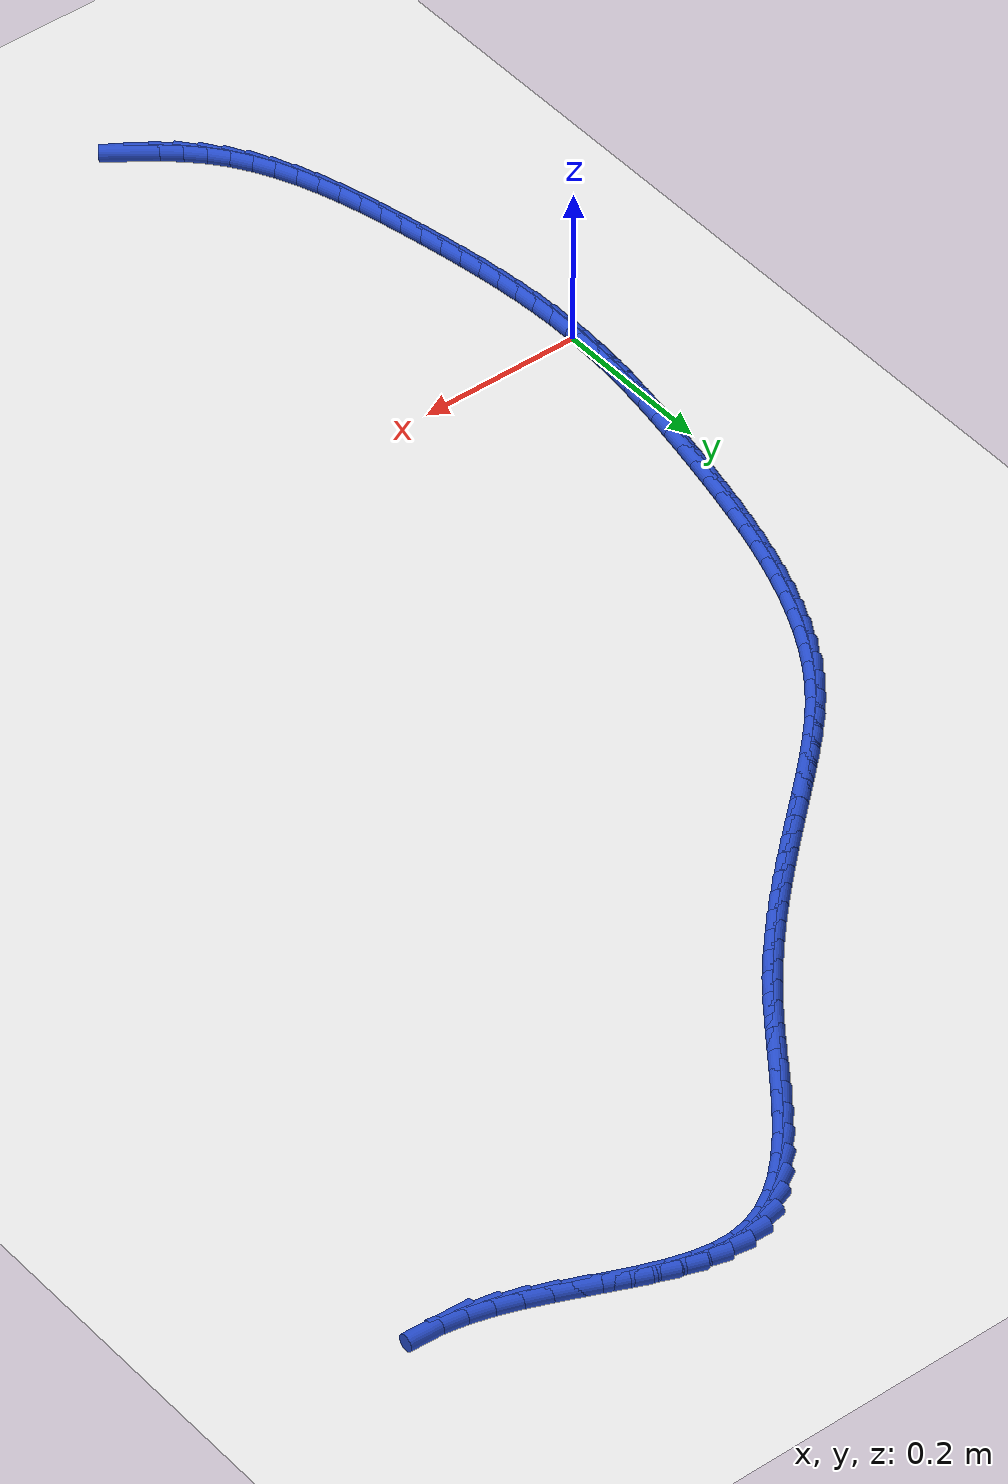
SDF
<sdf version="1.6">
 <world name="default">
  <model name="ground_plane">
   <static>1</static>
   <link name="link">
    <collision name="collision">
     <geometry><plane><normal>0 0 1</normal><size>100 100</size></plane></geometry>
     <surface><friction><ode><mu>100</mu><mu2>50</mu2></ode></friction></surface>
    </collision>
    <visual name="visual">
     <cast_shadows>0</cast_shadows>
     <geometry><plane><normal>0 0 1</normal><size>100 100</size></plane></geometry>
     <material>
      <script><uri>file://media/materials/scripts/gazebo.material</uri><name>Gazebo/WhiteGlow</name></script>
     </material>
    </visual>
   </link>
  </model>
  <model name="line">
   <link name="link_0">
    <pose>6.938893903907228e-18 -2.0816681711721685e-17 0.01 0 1.57 1.5494531435086585</pose>
    <collision name="collision">
     <geometry><cylinder><radius>0.01</radius><length>0.08</length></cylinder></geometry>
    </collision>
    <visual name="visual">
     <material>
      <script><name>Gazebo/Blue</name><uri>file://media/materials/scripts/gazebo.material</uri></script>
     </material>
     <geometry><cylinder><radius>0.01</radius><length>0.08</length></cylinder></geometry>
    </visual>
   </link>
   <link name="link_1">
    <pose>0.0005825838232916123 0.027291868838746187 0.01 0 1.57 1.515931259168401</pose>
    <collision name="collision">
     <geometry><cylinder><radius>0.01</radius><length>0.08</length></cylinder></geometry>
    </collision>
    <visual name="visual">
     <material>
      <script><name>Gazebo/Blue</name><uri>file://media/materials/scripts/gazebo.material</uri></script>
     </material>
     <geometry><cylinder><radius>0.01</radius><length>0.08</length></cylinder></geometry>
    </visual>
   </link>
   <link name="link_2">
    <pose>0.0020831431300984845 0.054614415231058575 0.01 0 1.57 1.4859358087470094</pose>
    <collision name="collision">
     <geometry><cylinder><radius>0.01</radius><length>0.08</length></cylinder></geometry>
    </collision>
    <visual name="visual">
     <material>
      <script><name>Gazebo/Blue</name><uri>file://media/materials/scripts/gazebo.material</uri></script>
     </material>
     <geometry><cylinder><radius>0.01</radius><length>0.08</length></cylinder></geometry>
    </visual>
   </link>
   <link name="link_3">
    <pose>0.004410571160714683 0.08197506018530926 0.01 0 1.57 1.4594881915163689</pose>
    <collision name="collision">
     <geometry><cylinder><radius>0.01</radius><length>0.08</length></cylinder></geometry>
    </collision>
    <visual name="visual">
     <material>
      <script><name>Gazebo/Blue</name><uri>file://media/materials/scripts/gazebo.material</uri></script>
     </material>
     <geometry><cylinder><radius>0.01</radius><length>0.08</length></cylinder></geometry>
    </visual>
   </link>
   <link name="link_4">
    <pose>0.007473761155434266 0.10938122470987041 0.01 0 1.57 1.4365766252881271</pose>
    <collision name="collision">
     <geometry><cylinder><radius>0.01</radius><length>0.08</length></cylinder></geometry>
    </collision>
    <visual name="visual">
     <material>
      <script><name>Gazebo/Blue</name><uri>file://media/materials/scripts/gazebo.material</uri></script>
     </material>
     <geometry><cylinder><radius>0.01</radius><length>0.08</length></cylinder></geometry>
    </visual>
   </link>
   <link name="link_5">
    <pose>0.011181606354551284 0.13684032981311414 0.01 0 1.57 1.4171663608020437</pose>
    <collision name="collision">
     <geometry><cylinder><radius>0.01</radius><length>0.08</length></cylinder></geometry>
    </collision>
    <visual name="visual">
     <material>
      <script><name>Gazebo/Blue</name><uri>file://media/materials/scripts/gazebo.material</uri></script>
     </material>
     <geometry><cylinder><radius>0.01</radius><length>0.08</length></cylinder></geometry>
    </visual>
   </link>
   <link name="link_6">
    <pose>0.015442999998359797 0.16435979650341256 0.01 0 1.57 1.401208474222697</pose>
    <collision name="collision">
     <geometry><cylinder><radius>0.01</radius><length>0.08</length></cylinder></geometry>
    </collision>
    <visual name="visual">
     <material>
      <script><name>Gazebo/Blue</name><uri>file://media/materials/scripts/gazebo.material</uri></script>
     </material>
     <geometry><cylinder><radius>0.01</radius><length>0.08</length></cylinder></geometry>
    </visual>
   </link>
   <link name="link_7">
    <pose>0.02016683532715386 0.19194704578913788 0.01 0 1.57 1.388647062900531</pose>
    <collision name="collision">
     <geometry><cylinder><radius>0.01</radius><length>0.08</length></cylinder></geometry>
    </collision>
    <visual name="visual">
     <material>
      <script><name>Gazebo/Blue</name><uri>file://media/materials/scripts/gazebo.material</uri></script>
     </material>
     <geometry><cylinder><radius>0.01</radius><length>0.08</length></cylinder></geometry>
    </visual>
   </link>
   <link name="link_8">
    <pose>0.025262005581227535 0.2196094986786622 0.01 0 1.57 1.3793966796333932</pose>
    <collision name="collision">
     <geometry><cylinder><radius>0.01</radius><length>0.08</length></cylinder></geometry>
    </collision>
    <visual name="visual">
     <material>
      <script><name>Gazebo/Blue</name><uri>file://media/materials/scripts/gazebo.material</uri></script>
     </material>
     <geometry><cylinder><radius>0.01</radius><length>0.08</length></cylinder></geometry>
    </visual>
   </link>
   <link name="link_9">
    <pose>0.030638147203376143 0.24735422685794506 0.01 0 1.57 1.3710302161828525</pose>
    <collision name="collision">
     <geometry><cylinder><radius>0.01</radius><length>0.08</length></cylinder></geometry>
    </collision>
    <visual name="visual">
     <material>
      <script><name>Gazebo/Blue</name><uri>file://media/materials/scripts/gazebo.material</uri></script>
     </material>
     <geometry><cylinder><radius>0.01</radius><length>0.08</length></cylinder></geometry>
    </visual>
   </link>
   <link name="link_10">
    <pose>0.036267644909226696 0.2751588088694036 0.01 0 1.57 1.3593739814863635</pose>
    <collision name="collision">
     <geometry><cylinder><radius>0.01</radius><length>0.08</length></cylinder></geometry>
    </collision>
    <visual name="visual">
     <material>
      <script><name>Gazebo/Blue</name><uri>file://media/materials/scripts/gazebo.material</uri></script>
     </material>
     <geometry><cylinder><radius>0.01</radius><length>0.08</length></cylinder></geometry>
    </visual>
   </link>
   <link name="link_11">
    <pose>0.042232331299595624 0.30294938021100704 0.01 0 1.57 1.343964227864858</pose>
    <collision name="collision">
     <geometry><cylinder><radius>0.01</radius><length>0.08</length></cylinder></geometry>
    </collision>
    <visual name="visual">
     <material>
      <script><name>Gazebo/Blue</name><uri>file://media/materials/scripts/gazebo.material</uri></script>
     </material>
     <geometry><cylinder><radius>0.01</radius><length>0.08</length></cylinder></geometry>
    </visual>
   </link>
   <link name="link_12">
    <pose>0.0486250381578275 0.3306469065098339 0.01 0 1.57 1.3247170430544049</pose>
    <collision name="collision">
     <geometry><cylinder><radius>0.01</radius><length>0.08</length></cylinder></geometry>
    </collision>
    <visual name="visual">
     <material>
      <script><name>Gazebo/Blue</name><uri>file://media/materials/scripts/gazebo.material</uri></script>
     </material>
     <geometry><cylinder><radius>0.01</radius><length>0.08</length></cylinder></geometry>
    </visual>
   </link>
   <link name="link_13">
    <pose>0.05553859726726691 0.3581723533929629 0.01 0 1.57 1.301516769421281</pose>
    <collision name="collision">
     <geometry><cylinder><radius>0.01</radius><length>0.08</length></cylinder></geometry>
    </collision>
    <visual name="visual">
     <material>
      <script><name>Gazebo/Blue</name><uri>file://media/materials/scripts/gazebo.material</uri></script>
     </material>
     <geometry><cylinder><radius>0.01</radius><length>0.08</length></cylinder></geometry>
    </visual>
   </link>
   <link name="link_14">
    <pose>0.06306584041125841 0.3854466864874726 0.01 0 1.57 1.2742229018336808</pose>
    <collision name="collision">
     <geometry><cylinder><radius>0.01</radius><length>0.08</length></cylinder></geometry>
    </collision>
    <visual name="visual">
     <material>
      <script><name>Gazebo/Blue</name><uri>file://media/materials/scripts/gazebo.material</uri></script>
     </material>
     <geometry><cylinder><radius>0.01</radius><length>0.08</length></cylinder></geometry>
    </visual>
   </link>
   <link name="link_15">
    <pose>0.07129959937314657 0.41239087142044156 0.01 0 1.57 1.242679327505642</pose>
    <collision name="collision">
     <geometry><cylinder><radius>0.01</radius><length>0.08</length></cylinder></geometry>
    </collision>
    <visual name="visual">
     <material>
      <script><name>Gazebo/Blue</name><uri>file://media/materials/scripts/gazebo.material</uri></script>
     </material>
     <geometry><cylinder><radius>0.01</radius><length>0.08</length></cylinder></geometry>
    </visual>
   </link>
   <link name="link_16">
    <pose>0.08033270593627595 0.4389258738189481 0.01 0 1.57 1.2067268173624675</pose>
    <collision name="collision">
     <geometry><cylinder><radius>0.01</radius><length>0.08</length></cylinder></geometry>
    </collision>
    <visual name="visual">
     <material>
      <script><name>Gazebo/Blue</name><uri>file://media/materials/scripts/gazebo.material</uri></script>
     </material>
     <geometry><cylinder><radius>0.01</radius><length>0.08</length></cylinder></geometry>
    </visual>
   </link>
   <link name="link_17">
    <pose>0.09025799188399117 0.46497265931007126 0.01 0 1.57 1.1662196836590046</pose>
    <collision name="collision">
     <geometry><cylinder><radius>0.01</radius><length>0.08</length></cylinder></geometry>
    </collision>
    <visual name="visual">
     <material>
      <script><name>Gazebo/Blue</name><uri>file://media/materials/scripts/gazebo.material</uri></script>
     </material>
     <geometry><cylinder><radius>0.01</radius><length>0.08</length></cylinder></geometry>
    </visual>
   </link>
   <link name="link_18">
    <pose>0.10116828899963673 0.49045219352088926 0.01 0 1.57 1.1210473194514161</pose>
    <collision name="collision">
     <geometry><cylinder><radius>0.01</radius><length>0.08</length></cylinder></geometry>
    </collision>
    <visual name="visual">
     <material>
      <script><name>Gazebo/Blue</name><uri>file://media/materials/scripts/gazebo.material</uri></script>
     </material>
     <geometry><cylinder><radius>0.01</radius><length>0.08</length></cylinder></geometry>
    </visual>
   </link>
   <link name="link_19">
    <pose>0.11315642906655723 0.5152854420784809 0.01 0 1.57 1.0711607935965868</pose>
    <collision name="collision">
     <geometry><cylinder><radius>0.01</radius><length>0.08</length></cylinder></geometry>
    </collision>
    <visual name="visual">
     <material>
      <script><name>Gazebo/Blue</name><uri>file://media/materials/scripts/gazebo.material</uri></script>
     </material>
     <geometry><cylinder><radius>0.01</radius><length>0.08</length></cylinder></geometry>
    </visual>
   </link>
   <link name="link_20">
    <pose>0.12631524386809725 0.5393933706099246 0.01 0 1.57 1.016603648147927</pose>
    <collision name="collision">
     <geometry><cylinder><radius>0.01</radius><length>0.08</length></cylinder></geometry>
    </collision>
    <visual name="visual">
     <material>
      <script><name>Gazebo/Blue</name><uri>file://media/materials/scripts/gazebo.material</uri></script>
     </material>
     <geometry><cylinder><radius>0.01</radius><length>0.08</length></cylinder></geometry>
    </visual>
   </link>
   <link name="link_21">
    <pose>0.1407375651876014 0.5626969447422993 0.01 0 1.57 0.9575444677504552</pose>
    <collision name="collision">
     <geometry><cylinder><radius>0.01</radius><length>0.08</length></cylinder></geometry>
    </collision>
    <visual name="visual">
     <material>
      <script><name>Gazebo/Blue</name><uri>file://media/materials/scripts/gazebo.material</uri></script>
     </material>
     <geometry><cylinder><radius>0.01</radius><length>0.08</length></cylinder></geometry>
    </visual>
   </link>
   <link name="link_22">
    <pose>0.15651622480841415 0.585117130102683 0.01 0 1.57 0.8946184165654034</pose>
    <collision name="collision">
     <geometry><cylinder><radius>0.01</radius><length>0.08</length></cylinder></geometry>
    </collision>
    <visual name="visual">
     <material>
      <script><name>Gazebo/Blue</name><uri>file://media/materials/scripts/gazebo.material</uri></script>
     </material>
     <geometry><cylinder><radius>0.01</radius><length>0.08</length></cylinder></geometry>
    </visual>
   </link>
   <link name="link_23">
    <pose>0.17373627909197395 0.6065789033945376 0.01 0 1.57 0.836023580005325</pose>
    <collision name="collision">
     <geometry><cylinder><radius>0.01</radius><length>0.08</length></cylinder></geometry>
    </collision>
    <visual name="visual">
     <material>
      <script><name>Gazebo/Blue</name><uri>file://media/materials/scripts/gazebo.material</uri></script>
     </material>
     <geometry><cylinder><radius>0.01</radius><length>0.08</length></cylinder></geometry>
    </visual>
   </link>
   <link name="link_24">
    <pose>0.19228601286615007 0.627108749080089 0.01 0 1.57 0.7897481582650647</pose>
    <collision name="collision">
     <geometry><cylinder><radius>0.01</radius><length>0.08</length></cylinder></geometry>
    </collision>
    <visual name="visual">
     <material>
      <script><name>Gazebo/Blue</name><uri>file://media/materials/scripts/gazebo.material</uri></script>
     </material>
     <geometry><cylinder><radius>0.01</radius><length>0.08</length></cylinder></geometry>
    </visual>
   </link>
   <link name="link_25">
    <pose>0.21184642646782254 0.6468400826584106 0.01 0 1.57 0.7556238388812125</pose>
    <collision name="collision">
     <geometry><cylinder><radius>0.01</radius><length>0.08</length></cylinder></geometry>
    </collision>
    <visual name="visual">
     <material>
      <script><name>Gazebo/Blue</name><uri>file://media/materials/scripts/gazebo.material</uri></script>
     </material>
     <geometry><cylinder><radius>0.01</radius><length>0.08</length></cylinder></geometry>
    </visual>
   </link>
   <link name="link_26">
    <pose>0.23208864043470145 0.6659114162818012 0.01 0 1.57 0.7331965562980377</pose>
    <collision name="collision">
     <geometry><cylinder><radius>0.01</radius><length>0.08</length></cylinder></geometry>
    </collision>
    <visual name="visual">
     <material>
      <script><name>Gazebo/Blue</name><uri>file://media/materials/scripts/gazebo.material</uri></script>
     </material>
     <geometry><cylinder><radius>0.01</radius><length>0.08</length></cylinder></geometry>
    </visual>
   </link>
   <link name="link_27">
    <pose>0.25268377530449676 0.6844612621025574 0.01 0 1.57 0.7220689563805252</pose>
    <collision name="collision">
     <geometry><cylinder><radius>0.01</radius><length>0.08</length></cylinder></geometry>
    </collision>
    <visual name="visual">
     <material>
      <script><name>Gazebo/Blue</name><uri>file://media/materials/scripts/gazebo.material</uri></script>
     </material>
     <geometry><cylinder><radius>0.01</radius><length>0.08</length></cylinder></geometry>
    </visual>
   </link>
   <link name="link_28">
    <pose>0.27331071656711353 0.7026281323857229 0.01 0 1.57 0.7184831092377628</pose>
    <collision name="collision">
     <geometry><cylinder><radius>0.01</radius><length>0.08</length></cylinder></geometry>
    </collision>
    <visual name="visual">
     <material>
      <script><name>Gazebo/Blue</name><uri>file://media/materials/scripts/gazebo.material</uri></script>
     </material>
     <geometry><cylinder><radius>0.01</radius><length>0.08</length></cylinder></geometry>
    </visual>
   </link>
   <link name="link_29">
    <pose>0.2938078131896725 0.7205505417117236 0.01 0 1.57 0.7189898173264087</pose>
    <collision name="collision">
     <geometry><cylinder><radius>0.01</radius><length>0.08</length></cylinder></geometry>
    </collision>
    <visual name="visual">
     <material>
      <script><name>Gazebo/Blue</name><uri>file://media/materials/scripts/gazebo.material</uri></script>
     </material>
     <geometry><cylinder><radius>0.01</radius><length>0.08</length></cylinder></geometry>
    </visual>
   </link>
   <link name="link_30">
    <pose>0.3141629223896402 0.7383670068318198 0.01 0 1.57 0.7235231356761888</pose>
    <collision name="collision">
     <geometry><cylinder><radius>0.01</radius><length>0.08</length></cylinder></geometry>
    </collision>
    <visual name="visual">
     <material>
      <script><name>Gazebo/Blue</name><uri>file://media/materials/scripts/gazebo.material</uri></script>
     </material>
     <geometry><cylinder><radius>0.01</radius><length>0.08</length></cylinder></geometry>
    </visual>
   </link>
   <link name="link_31">
    <pose>0.3343696726972589 0.7562160445810704 0.01 0 1.57 0.732079214448538</pose>
    <collision name="collision">
     <geometry><cylinder><radius>0.01</radius><length>0.08</length></cylinder></geometry>
    </collision>
    <visual name="visual">
     <material>
      <script><name>Gazebo/Blue</name><uri>file://media/materials/scripts/gazebo.material</uri></script>
     </material>
     <geometry><cylinder><radius>0.01</radius><length>0.08</length></cylinder></geometry>
    </visual>
   </link>
   <link name="link_32">
    <pose>0.35442169264277107 0.7742361717945343 0.01 0 1.57 0.7445742330993187</pose>
    <collision name="collision">
     <geometry><cylinder><radius>0.01</radius><length>0.08</length></cylinder></geometry>
    </collision>
    <visual name="visual">
     <material>
      <script><name>Gazebo/Blue</name><uri>file://media/materials/scripts/gazebo.material</uri></script>
     </material>
     <geometry><cylinder><radius>0.01</radius><length>0.08</length></cylinder></geometry>
    </visual>
   </link>
   <link name="link_33">
    <pose>0.37431261075641875 0.7925659053072703 0.01 0 1.57 0.7608431983652604</pose>
    <collision name="collision">
     <geometry><cylinder><radius>0.01</radius><length>0.08</length></cylinder></geometry>
    </collision>
    <visual name="visual">
     <material>
      <script><name>Gazebo/Blue</name><uri>file://media/materials/scripts/gazebo.material</uri></script>
     </material>
     <geometry><cylinder><radius>0.01</radius><length>0.08</length></cylinder></geometry>
    </visual>
   </link>
   <link name="link_34">
    <pose>0.39403605556844457 0.8113437619543372 0.01 0 1.57 0.7806414802405397</pose>
    <collision name="collision">
     <geometry><cylinder><radius>0.01</radius><length>0.08</length></cylinder></geometry>
    </collision>
    <visual name="visual">
     <material>
      <script><name>Gazebo/Blue</name><uri>file://media/materials/scripts/gazebo.material</uri></script>
     </material>
     <geometry><cylinder><radius>0.01</radius><length>0.08</length></cylinder></geometry>
    </visual>
   </link>
   <link name="link_35">
    <pose>0.41358565560909066 0.8307082585707939 0.01 0 1.57 0.8036497400095954</pose>
    <collision name="collision">
     <geometry><cylinder><radius>0.01</radius><length>0.08</length></cylinder></geometry>
    </collision>
    <visual name="visual">
     <material>
      <script><name>Gazebo/Blue</name><uri>file://media/materials/scripts/gazebo.material</uri></script>
     </material>
     <geometry><cylinder><radius>0.01</radius><length>0.08</length></cylinder></geometry>
    </visual>
   </link>
   <link name="link_36">
    <pose>0.4329550394085992 0.8507979119916991 0.01 0 1.57 0.829482736224326</pose>
    <collision name="collision">
     <geometry><cylinder><radius>0.01</radius><length>0.08</length></cylinder></geometry>
    </collision>
    <visual name="visual">
     <material>
      <script><name>Gazebo/Blue</name><uri>file://media/materials/scripts/gazebo.material</uri></script>
     </material>
     <geometry><cylinder><radius>0.01</radius><length>0.08</length></cylinder></geometry>
    </visual>
   </link>
   <link name="link_37">
    <pose>0.45213783549721265 0.8717512390521117 0.01 0 1.57 0.8577021111829118</pose>
    <collision name="collision">
     <geometry><cylinder><radius>0.01</radius><length>0.08</length></cylinder></geometry>
    </collision>
    <visual name="visual">
     <material>
      <script><name>Gazebo/Blue</name><uri>file://media/materials/scripts/gazebo.material</uri></script>
     </material>
     <geometry><cylinder><radius>0.01</radius><length>0.08</length></cylinder></geometry>
    </visual>
   </link>
   <link name="link_38">
    <pose>0.4711276724051735 0.8937067565870908 0.01 0 1.57 0.8878327082598387</pose>
    <collision name="collision">
     <geometry><cylinder><radius>0.01</radius><length>0.08</length></cylinder></geometry>
    </collision>
    <visual name="visual">
     <material>
      <script><name>Gazebo/Blue</name><uri>file://media/materials/scripts/gazebo.material</uri></script>
     </material>
     <geometry><cylinder><radius>0.01</radius><length>0.08</length></cylinder></geometry>
    </visual>
   </link>
   <link name="link_39">
    <pose>0.4899181786736791 0.9168029813638459 0.01 0 1.57 0.9166592646081043</pose>
    <collision name="collision">
     <geometry><cylinder><radius>0.01</radius><length>0.08</length></cylinder></geometry>
    </collision>
    <visual name="visual">
     <material>
      <script><name>Gazebo/Blue</name><uri>file://media/materials/scripts/gazebo.material</uri></script>
     </material>
     <geometry><cylinder><radius>0.01</radius><length>0.08</length></cylinder></geometry>
    </visual>
   </link>
   <link name="link_40">
    <pose>0.5085212726804981 0.9410651561491807 0.01 0 1.57 0.9339773057644073</pose>
    <collision name="collision">
     <geometry><cylinder><radius>0.01</radius><length>0.08</length></cylinder></geometry>
    </collision>
    <visual name="visual">
     <material>
      <script><name>Gazebo/Blue</name><uri>file://media/materials/scripts/gazebo.material</uri></script>
     </material>
     <geometry><cylinder><radius>0.01</radius><length>0.08</length></cylinder></geometry>
    </visual>
   </link>
   <link name="link_41">
    <pose>0.5270201900717003 0.9660768362050959 0.01 0 1.57 0.9383528872575571</pose>
    <collision name="collision">
     <geometry><cylinder><radius>0.01</radius><length>0.08</length></cylinder></geometry>
    </collision>
    <visual name="visual">
     <material>
      <script><name>Gazebo/Blue</name><uri>file://media/materials/scripts/gazebo.material</uri></script>
     </material>
     <geometry><cylinder><radius>0.01</radius><length>0.08</length></cylinder></geometry>
    </visual>
   </link>
   <link name="link_42">
    <pose>0.5455155468287546 0.991313935584696 0.01 0 1.57 0.9301605549803177</pose>
    <collision name="collision">
     <geometry><cylinder><radius>0.01</radius><length>0.08</length></cylinder></geometry>
    </collision>
    <visual name="visual">
     <material>
      <script><name>Gazebo/Blue</name><uri>file://media/materials/scripts/gazebo.material</uri></script>
     </material>
     <geometry><cylinder><radius>0.01</radius><length>0.08</length></cylinder></geometry>
    </visual>
   </link>
   <link name="link_43">
    <pose>0.5641079589331288 1.0162523683410845 0.01 0 1.57 0.9088896641070441</pose>
    <collision name="collision">
     <geometry><cylinder><radius>0.01</radius><length>0.08</length></cylinder></geometry>
    </collision>
    <visual name="visual">
     <material>
      <script><name>Gazebo/Blue</name><uri>file://media/materials/scripts/gazebo.material</uri></script>
     </material>
     <geometry><cylinder><radius>0.01</radius><length>0.08</length></cylinder></geometry>
    </visual>
   </link>
   <link name="link_44">
    <pose>0.5828980423662917 1.0403680485273656 0.01 0 1.57 0.8731017928134122</pose>
    <collision name="collision">
     <geometry><cylinder><radius>0.01</radius><length>0.08</length></cylinder></geometry>
    </collision>
    <visual name="visual">
     <material>
      <script><name>Gazebo/Blue</name><uri>file://media/materials/scripts/gazebo.material</uri></script>
     </material>
     <geometry><cylinder><radius>0.01</radius><length>0.08</length></cylinder></geometry>
    </visual>
   </link>
   <link name="link_45">
    <pose>0.6019864131097119 1.0631368901966443 0.01 0 1.57 0.8203136818103788</pose>
    <collision name="collision">
     <geometry><cylinder><radius>0.01</radius><length>0.08</length></cylinder></geometry>
    </collision>
    <visual name="visual">
     <material>
      <script><name>Gazebo/Blue</name><uri>file://media/materials/scripts/gazebo.material</uri></script>
     </material>
     <geometry><cylinder><radius>0.01</radius><length>0.08</length></cylinder></geometry>
    </visual>
   </link>
   <link name="link_46">
    <pose>0.621473687144858 1.0840348074020243 0.01 0 1.57 0.7468644261123002</pose>
    <collision name="collision">
     <geometry><cylinder><radius>0.01</radius><length>0.08</length></cylinder></geometry>
    </collision>
    <visual name="visual">
     <material>
      <script><name>Gazebo/Blue</name><uri>file://media/materials/scripts/gazebo.material</uri></script>
     </material>
     <geometry><cylinder><radius>0.01</radius><length>0.08</length></cylinder></geometry>
    </visual>
   </link>
   <link name="link_47">
    <pose>0.6414604804531984 1.1025377141966106 0.01 0 1.57 0.6479508072377705</pose>
    <collision name="collision">
     <geometry><cylinder><radius>0.01</radius><length>0.08</length></cylinder></geometry>
    </collision>
    <visual name="visual">
     <material>
      <script><name>Gazebo/Blue</name><uri>file://media/materials/scripts/gazebo.material</uri></script>
     </material>
     <geometry><cylinder><radius>0.01</radius><length>0.08</length></cylinder></geometry>
    </visual>
   </link>
   <link name="link_48">
    <pose>0.6620474090162014 1.1181215246335066 0.01 0 1.57 0.5183043014613671</pose>
    <collision name="collision">
     <geometry><cylinder><radius>0.01</radius><length>0.08</length></cylinder></geometry>
    </collision>
    <visual name="visual">
     <material>
      <script><name>Gazebo/Blue</name><uri>file://media/materials/scripts/gazebo.material</uri></script>
     </material>
     <geometry><cylinder><radius>0.01</radius><length>0.08</length></cylinder></geometry>
    </visual>
   </link>
   <link name="link_49">
    <pose>0.6833350888153358 1.1302621527658172 0.01 0 1.57 0.3543963441429075</pose>
    <collision name="collision">
     <geometry><cylinder><radius>0.01</radius><length>0.08</length></cylinder></geometry>
    </collision>
    <visual name="visual">
     <material>
      <script><name>Gazebo/Blue</name><uri>file://media/materials/scripts/gazebo.material</uri></script>
     </material>
     <geometry><cylinder><radius>0.01</radius><length>0.08</length></cylinder></geometry>
    </visual>
   </link>
   <link name="link_50">
    <pose>0.7054241358320703 1.1384355126466466 0.01 0 1.57 0.15952265452041242</pose>
    <collision name="collision">
     <geometry><cylinder><radius>0.01</radius><length>0.08</length></cylinder></geometry>
    </collision>
    <visual name="visual">
     <material>
      <script><name>Gazebo/Blue</name><uri>file://media/materials/scripts/gazebo.material</uri></script>
     </material>
     <geometry><cylinder><radius>0.01</radius><length>0.08</length></cylinder></geometry>
    </visual>
   </link>
   <link name="link_51">
    <pose>0.7284126194850585 1.1421341233742 0.01 0 1.57 -0.030824034987810355</pose>
    <collision name="collision">
     <geometry><cylinder><radius>0.01</radius><length>0.08</length></cylinder></geometry>
    </collision>
    <visual name="visual">
     <material>
      <script><name>Gazebo/Blue</name><uri>file://media/materials/scripts/gazebo.material</uri></script>
     </material>
     <geometry><cylinder><radius>0.01</radius><length>0.08</length></cylinder></geometry>
    </visual>
   </link>
   <link name="link_52">
    <pose>0.7523147783640864 1.1413971289665221 0.01 0 1.57 -0.17905438845074315</pose>
    <collision name="collision">
     <geometry><cylinder><radius>0.01</radius><length>0.08</length></cylinder></geometry>
    </collision>
    <visual name="visual">
     <material>
      <script><name>Gazebo/Blue</name><uri>file://media/materials/scripts/gazebo.material</uri></script>
     </material>
     <geometry><cylinder><radius>0.01</radius><length>0.08</length></cylinder></geometry>
    </visual>
   </link>
   <link name="link_53">
    <pose>0.7770439939159024 1.136921319661698 0.01 0 1.57 -0.28567090460512023</pose>
    <collision name="collision">
     <geometry><cylinder><radius>0.01</radius><length>0.08</length></cylinder></geometry>
    </collision>
    <visual name="visual">
     <material>
      <script><name>Gazebo/Blue</name><uri>file://media/materials/scripts/gazebo.material</uri></script>
     </material>
     <geometry><cylinder><radius>0.01</radius><length>0.08</length></cylinder></geometry>
    </visual>
   </link>
   <link name="link_54">
    <pose>0.8025076592235597 1.1294425332519054 0.01 0 1.57 -0.35730429045220624</pose>
    <collision name="collision">
     <geometry><cylinder><radius>0.01</radius><length>0.08</length></cylinder></geometry>
    </collision>
    <visual name="visual">
     <material>
      <script><name>Gazebo/Blue</name><uri>file://media/materials/scripts/gazebo.material</uri></script>
     </material>
     <geometry><cylinder><radius>0.01</radius><length>0.08</length></cylinder></geometry>
    </visual>
   </link>
   <link name="link_55">
    <pose>0.8286131673701104 1.1196966075293189 0.01 0 1.57 -0.40024766200278244</pose>
    <collision name="collision">
     <geometry><cylinder><radius>0.01</radius><length>0.08</length></cylinder></geometry>
    </collision>
    <visual name="visual">
     <material>
      <script><name>Gazebo/Blue</name><uri>file://media/materials/scripts/gazebo.material</uri></script>
     </material>
     <geometry><cylinder><radius>0.01</radius><length>0.08</length></cylinder></geometry>
    </visual>
   </link>
   <link name="link_56">
    <pose>0.8552679114386079 1.1084193802861162 0.01 0 1.57 -0.4189384292275789</pose>
    <collision name="collision">
     <geometry><cylinder><radius>0.01</radius><length>0.08</length></cylinder></geometry>
    </collision>
    <visual name="visual">
     <material>
      <script><name>Gazebo/Blue</name><uri>file://media/materials/scripts/gazebo.material</uri></script>
     </material>
     <geometry><cylinder><radius>0.01</radius><length>0.08</length></cylinder></geometry>
    </visual>
   </link>
   <link name="link_57">
    <pose>0.8823792845121055 1.0963466893144738 0.01 0 1.57 -0.41582166457328296</pose>
    <collision name="collision">
     <geometry><cylinder><radius>0.01</radius><length>0.08</length></cylinder></geometry>
    </collision>
    <visual name="visual">
     <material>
      <script><name>Gazebo/Blue</name><uri>file://media/materials/scripts/gazebo.material</uri></script>
     </material>
     <geometry><cylinder><radius>0.01</radius><length>0.08</length></cylinder></geometry>
    </visual>
   </link>
   <link name="link_58">
    <pose>0.9098546796736561 1.0842143724065676 0.01 0 1.57 -0.3915603402157383</pose>
    <collision name="collision">
     <geometry><cylinder><radius>0.01</radius><length>0.08</length></cylinder></geometry>
    </collision>
    <visual name="visual">
     <material>
      <script><name>Gazebo/Blue</name><uri>file://media/materials/scripts/gazebo.material</uri></script>
     </material>
     <geometry><cylinder><radius>0.01</radius><length>0.08</length></cylinder></geometry>
    </visual>
   </link>
   <link name="link_59">
    <pose>0.9376014900063123 1.072758267354575 0.01 0 1.57 -0.3452649383062241</pose>
    <collision name="collision">
     <geometry><cylinder><radius>0.01</radius><length>0.08</length></cylinder></geometry>
    </collision>
    <visual name="visual">
     <material>
      <script><name>Gazebo/Blue</name><uri>file://media/materials/scripts/gazebo.material</uri></script>
     </material>
     <geometry><cylinder><radius>0.01</radius><length>0.08</length></cylinder></geometry>
    </visual>
   </link>
   <link name="link_60">
    <pose>0.9655271085931276 1.0627142119506725 0.01 0 1.57 -0.2747576616143301</pose>
    <collision name="collision">
     <geometry><cylinder><radius>0.01</radius><length>0.08</length></cylinder></geometry>
    </collision>
    <visual name="visual">
     <material>
      <script><name>Gazebo/Blue</name><uri>file://media/materials/scripts/gazebo.material</uri></script>
     </material>
     <geometry><cylinder><radius>0.01</radius><length>0.08</length></cylinder></geometry>
    </visual>
   </link>
   <link name="link_61">
    <pose>0.9935389285171548 1.0548180439870365 0.01 0 1.57 -0.17710593868156585</pose>
    <collision name="collision">
     <geometry><cylinder><radius>0.01</radius><length>0.08</length></cylinder></geometry>
    </collision>
    <visual name="visual">
     <material>
      <script><name>Gazebo/Blue</name><uri>file://media/materials/scripts/gazebo.material</uri></script>
     </material>
     <geometry><cylinder><radius>0.01</radius><length>0.08</length></cylinder></geometry>
    </visual>
   </link>
   <link name="link_62">
    <pose>1.0215443428614468 1.0498056012558432 0.01 0 1.57 -0.05012006672405184</pose>
    <collision name="collision">
     <geometry><cylinder><radius>0.01</radius><length>0.08</length></cylinder></geometry>
    </collision>
    <visual name="visual">
     <material>
      <script><name>Gazebo/Blue</name><uri>file://media/materials/scripts/gazebo.material</uri></script>
     </material>
     <geometry><cylinder><radius>0.01</radius><length>0.08</length></cylinder></geometry>
    </visual>
   </link>
   <link name="link_239">
    <pose>0.18441896808826258 -0.5298125430150418 0.01 0 1.57 -0.6531950560358889</pose>
    <collision name="collision">
     <geometry><cylinder><radius>0.01</radius><length>0.08</length></cylinder></geometry>
    </collision>
    <visual name="visual">
     <material>
      <script><name>Gazebo/Blue</name><uri>file://media/materials/scripts/gazebo.material</uri></script>
     </material>
     <geometry><cylinder><radius>0.01</radius><length>0.08</length></cylinder></geometry>
    </visual>
   </link>
   <link name="link_240">
    <pose>0.16288292800357618 -0.5133319116436128 0.01 0 1.57 -0.7212729313689993</pose>
    <collision name="collision">
     <geometry><cylinder><radius>0.01</radius><length>0.08</length></cylinder></geometry>
    </collision>
    <visual name="visual">
     <material>
      <script><name>Gazebo/Blue</name><uri>file://media/materials/scripts/gazebo.material</uri></script>
     </material>
     <geometry><cylinder><radius>0.01</radius><length>0.08</length></cylinder></geometry>
    </visual>
   </link>
   <link name="link_241">
    <pose>0.1427742816033263 -0.49564992541998 0.01 0 1.57 -0.8036781577316793</pose>
    <collision name="collision">
     <geometry><cylinder><radius>0.01</radius><length>0.08</length></cylinder></geometry>
    </collision>
    <visual name="visual">
     <material>
      <script><name>Gazebo/Blue</name><uri>file://media/materials/scripts/gazebo.material</uri></script>
     </material>
     <geometry><cylinder><radius>0.01</radius><length>0.08</length></cylinder></geometry>
    </visual>
   </link>
   <link name="link_242">
    <pose>0.12434509225705703 -0.4765343413722814 0.01 0 1.57 -0.8995068670958198</pose>
    <collision name="collision">
     <geometry><cylinder><radius>0.01</radius><length>0.08</length></cylinder></geometry>
    </collision>
    <visual name="visual">
     <material>
      <script><name>Gazebo/Blue</name><uri>file://media/materials/scripts/gazebo.material</uri></script>
     </material>
     <geometry><cylinder><radius>0.01</radius><length>0.08</length></cylinder></geometry>
    </visual>
   </link>
   <link name="link_243">
    <pose>0.10784180718957258 -0.45575863994278043 0.01 0 1.57 -0.9968721610031157</pose>
    <collision name="collision">
     <geometry><cylinder><radius>0.01</radius><length>0.08</length></cylinder></geometry>
    </collision>
    <visual name="visual">
     <material>
      <script><name>Gazebo/Blue</name><uri>file://media/materials/scripts/gazebo.material</uri></script>
     </material>
     <geometry><cylinder><radius>0.01</radius><length>0.08</length></cylinder></geometry>
    </visual>
   </link>
   <link name="link_244">
    <pose>0.09331755088606714 -0.4332933168128281 0.01 0 1.57 -1.082127539350955</pose>
    <collision name="collision">
     <geometry><cylinder><radius>0.01</radius><length>0.08</length></cylinder></geometry>
    </collision>
    <visual name="visual">
     <material>
      <script><name>Gazebo/Blue</name><uri>file://media/materials/scripts/gazebo.material</uri></script>
     </material>
     <geometry><cylinder><radius>0.01</radius><length>0.08</length></cylinder></geometry>
    </visual>
   </link>
   <link name="link_245">
    <pose>0.08058789273699812 -0.4093509601040144 0.01 0 1.57 -1.1546405810433693</pose>
    <collision name="collision">
     <geometry><cylinder><radius>0.01</radius><length>0.08</length></cylinder></geometry>
    </collision>
    <visual name="visual">
     <material>
      <script><name>Gazebo/Blue</name><uri>file://media/materials/scripts/gazebo.material</uri></script>
     </material>
     <geometry><cylinder><radius>0.01</radius><length>0.08</length></cylinder></geometry>
    </visual>
   </link>
   <link name="link_246">
    <pose>0.06945382162427316 -0.38415901693684656 0.01 0 1.57 -1.21513241855702</pose>
    <collision name="collision">
     <geometry><cylinder><radius>0.01</radius><length>0.08</length></cylinder></geometry>
    </collision>
    <visual name="visual">
     <material>
      <script><name>Gazebo/Blue</name><uri>file://media/materials/scripts/gazebo.material</uri></script>
     </material>
     <geometry><cylinder><radius>0.01</radius><length>0.08</length></cylinder></geometry>
    </visual>
   </link>
   <link name="link_247">
    <pose>0.05971632642979873 -0.35794493443182973 0.01 0 1.57 -1.2645524184513186</pose>
    <collision name="collision">
     <geometry><cylinder><radius>0.01</radius><length>0.08</length></cylinder></geometry>
    </collision>
    <visual name="visual">
     <material>
      <script><name>Gazebo/Blue</name><uri>file://media/materials/scripts/gazebo.material</uri></script>
     </material>
     <geometry><cylinder><radius>0.01</radius><length>0.08</length></cylinder></geometry>
    </visual>
   </link>
   <link name="link_248">
    <pose>0.05117639603548171 -0.3309361597094698 0.01 0 1.57 -1.3038476151764602</pose>
    <collision name="collision">
     <geometry><cylinder><radius>0.01</radius><length>0.08</length></cylinder></geometry>
    </collision>
    <visual name="visual">
     <material>
      <script><name>Gazebo/Blue</name><uri>file://media/materials/scripts/gazebo.material</uri></script>
     </material>
     <geometry><cylinder><radius>0.01</radius><length>0.08</length></cylinder></geometry>
    </visual>
   </link>
   <link name="link_249">
    <pose>0.04363501932322899 -0.3033601398902729 0.01 0 1.57 -1.333827967896427</pose>
    <collision name="collision">
     <geometry><cylinder><radius>0.01</radius><length>0.08</length></cylinder></geometry>
    </collision>
    <visual name="visual">
     <material>
      <script><name>Gazebo/Blue</name><uri>file://media/materials/scripts/gazebo.material</uri></script>
     </material>
     <geometry><cylinder><radius>0.01</radius><length>0.08</length></cylinder></geometry>
    </visual>
   </link>
   <link name="link_250">
    <pose>0.03689318517494745 -0.2754443220947445 0.01 0 1.57 -1.3550933678365322</pose>
    <collision name="collision">
     <geometry><cylinder><radius>0.01</radius><length>0.08</length></cylinder></geometry>
    </collision>
    <visual name="visual">
     <material>
      <script><name>Gazebo/Blue</name><uri>file://media/materials/scripts/gazebo.material</uri></script>
     </material>
     <geometry><cylinder><radius>0.01</radius><length>0.08</length></cylinder></geometry>
    </visual>
   </link>
   <link name="link_251">
    <pose>0.03075188247254397 -0.24741615344339077 0.01 0 1.57 -1.3686643871873794</pose>
    <collision name="collision">
     <geometry><cylinder><radius>0.01</radius><length>0.08</length></cylinder></geometry>
    </collision>
    <visual name="visual">
     <material>
      <script><name>Gazebo/Blue</name><uri>file://media/materials/scripts/gazebo.material</uri></script>
     </material>
     <geometry><cylinder><radius>0.01</radius><length>0.08</length></cylinder></geometry>
    </visual>
   </link>
   <link name="link_252">
    <pose>0.025028566914383835 -0.21948807844253473 0.01 0 1.57 -1.3813419219524092</pose>
    <collision name="collision">
     <geometry><cylinder><radius>0.01</radius><length>0.08</length></cylinder></geometry>
    </collision>
    <visual name="visual">
     <material>
      <script><name>Gazebo/Blue</name><uri>file://media/materials/scripts/gazebo.material</uri></script>
     </material>
     <geometry><cylinder><radius>0.01</radius><length>0.08</length></cylinder></geometry>
    </visual>
   </link>
   <link name="link_253">
    <pose>0.019704548033659446 -0.1917232573775748 0.01 0 1.57 -1.3970142287470704</pose>
    <collision name="collision">
     <geometry><cylinder><radius>0.01</radius><length>0.08</length></cylinder></geometry>
    </collision>
    <visual name="visual">
     <material>
      <script><name>Gazebo/Blue</name><uri>file://media/materials/scripts/gazebo.material</uri></script>
     </material>
     <geometry><cylinder><radius>0.01</radius><length>0.08</length></cylinder></geometry>
    </visual>
   </link>
   <link name="link_254">
    <pose>0.014855075462217131 -0.16409926343454972 0.01 0 1.57 -1.4157762836351964</pose>
    <collision name="collision">
     <geometry><cylinder><radius>0.01</radius><length>0.08</length></cylinder></geometry>
    </collision>
    <visual name="visual">
     <material>
      <script><name>Gazebo/Blue</name><uri>file://media/materials/scripts/gazebo.material</uri></script>
     </material>
     <geometry><cylinder><radius>0.01</radius><length>0.08</length></cylinder></geometry>
    </visual>
   </link>
   <link name="link_255">
    <pose>0.010556511476333926 -0.136592656089584 0.01 0 1.57 -1.437661627627365</pose>
    <collision name="collision">
     <geometry><cylinder><radius>0.01</radius><length>0.08</length></cylinder></geometry>
    </collision>
    <visual name="visual">
     <material>
      <script><name>Gazebo/Blue</name><uri>file://media/materials/scripts/gazebo.material</uri></script>
     </material>
     <geometry><cylinder><radius>0.01</radius><length>0.08</length></cylinder></geometry>
    </visual>
   </link>
   <link name="link_256">
    <pose>0.006885218352286836 -0.10917999481880196 0.01 0 1.57 -1.4626816551248691</pose>
    <collision name="collision">
     <geometry><cylinder><radius>0.01</radius><length>0.08</length></cylinder></geometry>
    </collision>
    <visual name="visual">
     <material>
      <script><name>Gazebo/Blue</name><uri>file://media/materials/scripts/gazebo.material</uri></script>
     </material>
     <geometry><cylinder><radius>0.01</radius><length>0.08</length></cylinder></geometry>
    </visual>
   </link>
   <link name="link_257">
    <pose>0.003917558366352884 -0.08183783909832809 0.01 0 1.57 -1.490818641750625</pose>
    <collision name="collision">
     <geometry><cylinder><radius>0.01</radius><length>0.08</length></cylinder></geometry>
    </collision>
    <visual name="visual">
     <material>
      <script><name>Gazebo/Blue</name><uri>file://media/materials/scripts/gazebo.material</uri></script>
     </material>
     <geometry><cylinder><radius>0.01</radius><length>0.08</length></cylinder></geometry>
    </visual>
   </link>
   <link name="link_258">
    <pose>0.0017298937948090833 -0.05454274840428687 0.01 0 1.57 -1.5220182067512784</pose>
    <collision name="collision">
     <geometry><cylinder><radius>0.01</radius><length>0.08</length></cylinder></geometry>
    </collision>
    <visual name="visual">
     <material>
      <script><name>Gazebo/Blue</name><uri>file://media/materials/scripts/gazebo.material</uri></script>
     </material>
     <geometry><cylinder><radius>0.01</radius><length>0.08</length></cylinder></geometry>
    </visual>
   </link>
   <link name="link_259">
    <pose>0.00039858691393245514 -0.027271282212802693 0.01 0 1.57 -1.556181739447355</pose>
    <collision name="collision">
     <geometry><cylinder><radius>0.01</radius><length>0.08</length></cylinder></geometry>
    </collision>
    <visual name="visual">
     <material>
      <script><name>Gazebo/Blue</name><uri>file://media/materials/scripts/gazebo.material</uri></script>
     </material>
     <geometry><cylinder><radius>0.01</radius><length>0.08</length></cylinder></geometry>
    </visual>
   </link>
   <link name="link_260">
    <pose>1.3010426069826053e-17 -4.85722573273506e-17 0.01 0 1.57 1.5484331149069628</pose>
    <collision name="collision">
     <geometry><cylinder><radius>0.01</radius><length>0.08</length></cylinder></geometry>
    </collision>
    <visual name="visual">
     <material>
      <script><name>Gazebo/Blue</name><uri>file://media/materials/scripts/gazebo.material</uri></script>
     </material>
     <geometry><cylinder><radius>0.01</radius><length>0.08</length></cylinder></geometry>
    </visual>
   </link>
   <link name="link_261">
    <pose>0.0006104953292887759 0.027294538757996648 0.01 0 1.57 1.5088470500992681</pose>
    <collision name="collision">
     <geometry><cylinder><radius>0.01</radius><length>0.08</length></cylinder></geometry>
    </collision>
    <visual name="visual">
     <material>
      <script><name>Gazebo/Blue</name><uri>file://media/materials/scripts/gazebo.material</uri></script>
     </material>
     <geometry><cylinder><radius>0.01</radius><length>0.08</length></cylinder></geometry>
    </visual>
   </link>
   <link name="link_262">
    <pose>0.002306435178075758 0.05463577458506293 0.01 0 1.57 1.528606633847165</pose>
    <collision name="collision">
     <geometry><cylinder><radius>0.01</radius><length>0.08</length></cylinder></geometry>
    </collision>
    <visual name="visual">
     <material>
      <script><name>Gazebo/Blue</name><uri>file://media/materials/scripts/gazebo.material</uri></script>
     </material>
     <geometry><cylinder><radius>0.01</radius><length>0.08</length></cylinder></geometry>
    </visual>
   </link>
  </model>
 </world>
</sdf>
